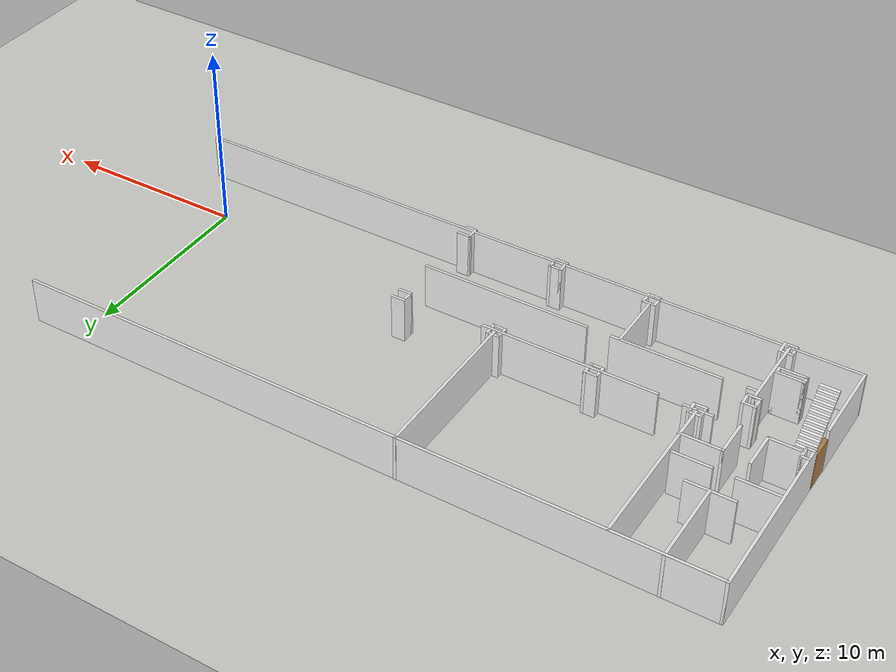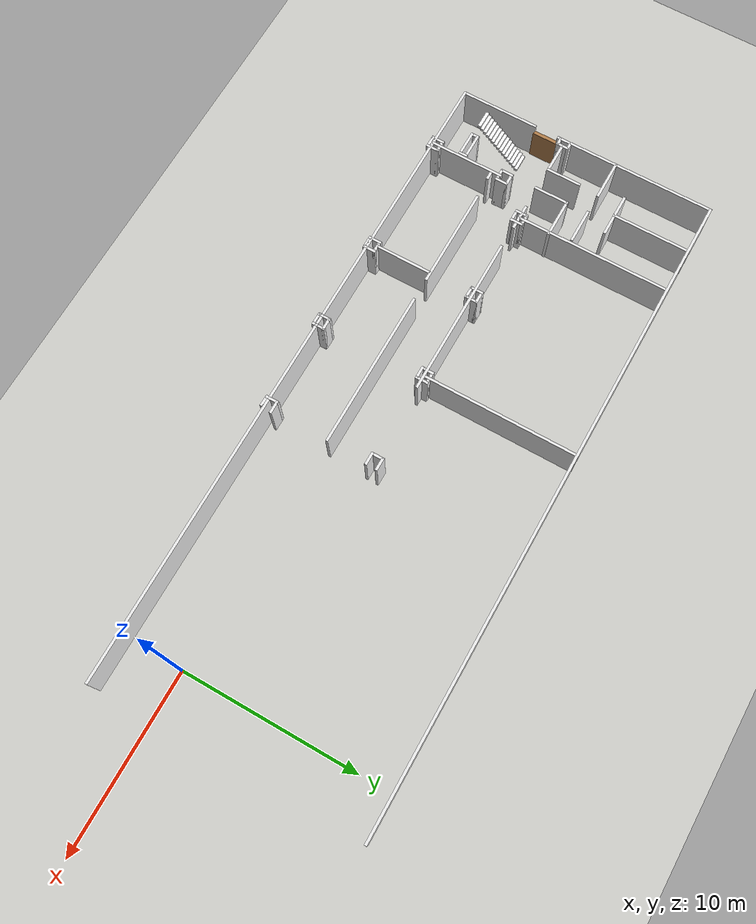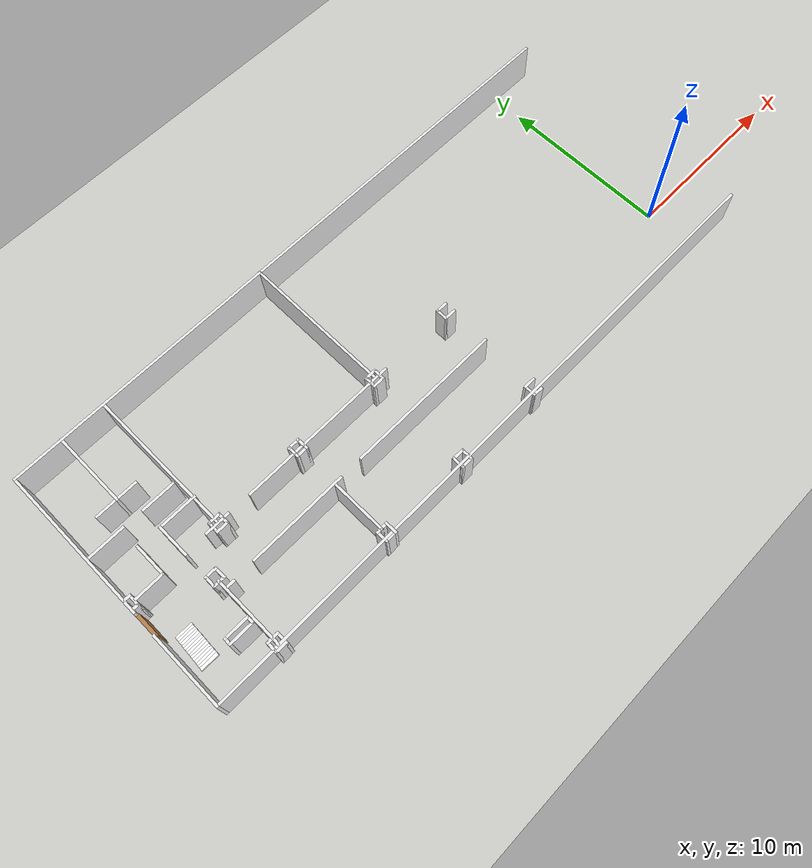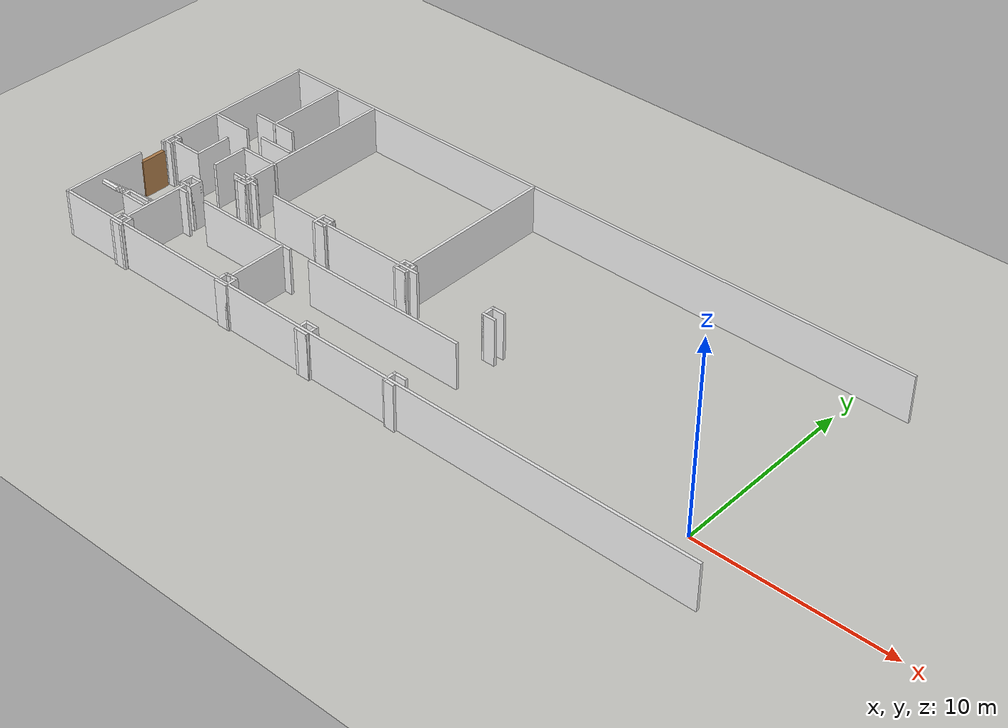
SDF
<sdf version="1.7">
 <world name="default">
  <model name="ground_plane">
   <static>1</static>
   <link name="link">
    <collision name="collision">
     <geometry><plane><normal>0 0 1</normal><size>100 100</size></plane></geometry>
     <surface><friction><ode><mu>100</mu><mu2>50</mu2></ode></friction></surface>
    </collision>
    <visual name="visual">
     <cast_shadows>0</cast_shadows>
     <geometry><plane><normal>0 0 1</normal><size>100 100</size></plane></geometry>
     <material>
      <script><uri>file://media/materials/scripts/gazebo.material</uri><name>Gazebo/CeilingTiled</name></script>
     </material>
    </visual>
   </link>
  </model>
  <model name="Peta_DC">
   <pose>-13.289 4.38092 0 0 -0 0</pose>
   <link name="Door_8">
    <collision name="Door_8_Collision">
     <geometry><box><size>1.42 0.2 2</size></box></geometry>
     <pose>0 0 1 0 -0 0</pose>
    </collision>
    <visual name="Door_8_Visual">
     <pose>0 0 1 0 -0 0</pose>
     <geometry><box><size>1.42 0.2 2</size></box></geometry>
     <material>
      <script><uri>file://media/materials/scripts/gazebo.material</uri><name>Gazebo/Wood</name></script>
     </material>
    </visual>
    <pose>-21.0737 -2.32904 0 0 0 -1.5708</pose>
   </link>
   <link name="Stairs_0">
    <visual name="Stairs_0_Visual_0">
     <pose>-20.1037 -3.21304 0.083333 0 -0 0</pose>
     <geometry><box><size>1 0.178 0.166667</size></box></geometry>
     <material>
      <script><uri>file://media/materials/scripts/gazebo.material</uri><name>Gazebo/Steps</name></script>
      <ambient>1 1 1 1</ambient>
     </material>
     <meta><layer>0</layer></meta>
    </visual>
    <collision name="Stairs_0_Collision_0">
     <geometry><box><size>1 0.178 0.166667</size></box></geometry>
     <pose>-20.1037 -3.21304 0.083333 0 -0 0</pose>
    </collision>
    <visual name="Stairs_0_Visual_1">
     <pose>-20.1037 -3.39104 0.25 0 -0 0</pose>
     <geometry><box><size>1 0.178 0.166667</size></box></geometry>
     <material>
      <script><uri>file://media/materials/scripts/gazebo.material</uri><name>Gazebo/Steps</name></script>
      <ambient>1 1 1 1</ambient>
     </material>
     <meta><layer>0</layer></meta>
    </visual>
    <collision name="Stairs_0_Collision_1">
     <geometry><box><size>1 0.178 0.166667</size></box></geometry>
     <pose>-20.1037 -3.39104 0.25 0 -0 0</pose>
    </collision>
    <visual name="Stairs_0_Visual_2">
     <pose>-20.1037 -3.56904 0.416667 0 -0 0</pose>
     <geometry><box><size>1 0.178 0.166667</size></box></geometry>
     <material>
      <script><uri>file://media/materials/scripts/gazebo.material</uri><name>Gazebo/Steps</name></script>
      <ambient>1 1 1 1</ambient>
     </material>
     <meta><layer>0</layer></meta>
    </visual>
    <collision name="Stairs_0_Collision_2">
     <geometry><box><size>1 0.178 0.166667</size></box></geometry>
     <pose>-20.1037 -3.56904 0.416667 0 -0 0</pose>
    </collision>
    <visual name="Stairs_0_Visual_3">
     <pose>-20.1037 -3.74704 0.583333 0 -0 0</pose>
     <geometry><box><size>1 0.178 0.166667</size></box></geometry>
     <material>
      <script><uri>file://media/materials/scripts/gazebo.material</uri><name>Gazebo/Steps</name></script>
      <ambient>1 1 1 1</ambient>
     </material>
     <meta><layer>0</layer></meta>
    </visual>
    <collision name="Stairs_0_Collision_3">
     <geometry><box><size>1 0.178 0.166667</size></box></geometry>
     <pose>-20.1037 -3.74704 0.583333 0 -0 0</pose>
    </collision>
    <visual name="Stairs_0_Visual_4">
     <pose>-20.1037 -3.92504 0.75 0 -0 0</pose>
     <geometry><box><size>1 0.178 0.166667</size></box></geometry>
     <material>
      <script><uri>file://media/materials/scripts/gazebo.material</uri><name>Gazebo/Steps</name></script>
      <ambient>1 1 1 1</ambient>
     </material>
     <meta><layer>0</layer></meta>
    </visual>
    <collision name="Stairs_0_Collision_4">
     <geometry><box><size>1 0.178 0.166667</size></box></geometry>
     <pose>-20.1037 -3.92504 0.75 0 -0 0</pose>
    </collision>
    <visual name="Stairs_0_Visual_5">
     <pose>-20.1037 -4.10304 0.916667 0 -0 0</pose>
     <geometry><box><size>1 0.178 0.166667</size></box></geometry>
     <material>
      <script><uri>file://media/materials/scripts/gazebo.material</uri><name>Gazebo/Steps</name></script>
      <ambient>1 1 1 1</ambient>
     </material>
     <meta><layer>0</layer></meta>
    </visual>
    <collision name="Stairs_0_Collision_5">
     <geometry><box><size>1 0.178 0.166667</size></box></geometry>
     <pose>-20.1037 -4.10304 0.916667 0 -0 0</pose>
    </collision>
    <visual name="Stairs_0_Visual_6">
     <pose>-20.1037 -4.28104 1.08333 0 -0 0</pose>
     <geometry><box><size>1 0.178 0.166667</size></box></geometry>
     <material>
      <script><uri>file://media/materials/scripts/gazebo.material</uri><name>Gazebo/Steps</name></script>
      <ambient>1 1 1 1</ambient>
     </material>
     <meta><layer>0</layer></meta>
    </visual>
    <collision name="Stairs_0_Collision_6">
     <geometry><box><size>1 0.178 0.166667</size></box></geometry>
     <pose>-20.1037 -4.28104 1.08333 0 -0 0</pose>
    </collision>
    <visual name="Stairs_0_Visual_7">
     <pose>-20.1037 -4.45904 1.25 0 -0 0</pose>
     <geometry><box><size>1 0.178 0.166667</size></box></geometry>
     <material>
      <script><uri>file://media/materials/scripts/gazebo.material</uri><name>Gazebo/Steps</name></script>
      <ambient>1 1 1 1</ambient>
     </material>
     <meta><layer>0</layer></meta>
    </visual>
    <collision name="Stairs_0_Collision_7">
     <geometry><box><size>1 0.178 0.166667</size></box></geometry>
     <pose>-20.1037 -4.45904 1.25 0 -0 0</pose>
    </collision>
    <visual name="Stairs_0_Visual_8">
     <pose>-20.1037 -4.63704 1.41667 0 -0 0</pose>
     <geometry><box><size>1 0.178 0.166667</size></box></geometry>
     <material>
      <script><uri>file://media/materials/scripts/gazebo.material</uri><name>Gazebo/Steps</name></script>
      <ambient>1 1 1 1</ambient>
     </material>
     <meta><layer>0</layer></meta>
    </visual>
    <collision name="Stairs_0_Collision_8">
     <geometry><box><size>1 0.178 0.166667</size></box></geometry>
     <pose>-20.1037 -4.63704 1.41667 0 -0 0</pose>
    </collision>
    <visual name="Stairs_0_Visual_9">
     <pose>-20.1037 -4.81504 1.58333 0 -0 0</pose>
     <geometry><box><size>1 0.178 0.166667</size></box></geometry>
     <material>
      <script><uri>file://media/materials/scripts/gazebo.material</uri><name>Gazebo/Steps</name></script>
      <ambient>1 1 1 1</ambient>
     </material>
     <meta><layer>0</layer></meta>
    </visual>
    <collision name="Stairs_0_Collision_9">
     <geometry><box><size>1 0.178 0.166667</size></box></geometry>
     <pose>-20.1037 -4.81504 1.58333 0 -0 0</pose>
    </collision>
    <visual name="Stairs_0_Visual_10">
     <pose>-20.1037 -4.99304 1.75 0 -0 0</pose>
     <geometry><box><size>1 0.178 0.166667</size></box></geometry>
     <material>
      <script><uri>file://media/materials/scripts/gazebo.material</uri><name>Gazebo/Steps</name></script>
      <ambient>1 1 1 1</ambient>
     </material>
     <meta><layer>0</layer></meta>
    </visual>
    <collision name="Stairs_0_Collision_10">
     <geometry><box><size>1 0.178 0.166667</size></box></geometry>
     <pose>-20.1037 -4.99304 1.75 0 -0 0</pose>
    </collision>
    <visual name="Stairs_0_Visual_11">
     <pose>-20.1037 -5.17104 1.91667 0 -0 0</pose>
     <geometry><box><size>1 0.178 0.166667</size></box></geometry>
     <material>
      <script><uri>file://media/materials/scripts/gazebo.material</uri><name>Gazebo/Steps</name></script>
      <ambient>1 1 1 1</ambient>
     </material>
     <meta><layer>0</layer></meta>
    </visual>
    <collision name="Stairs_0_Collision_11">
     <geometry><box><size>1 0.178 0.166667</size></box></geometry>
     <pose>-20.1037 -5.17104 1.91667 0 -0 0</pose>
    </collision>
    <visual name="Stairs_0_Visual_12">
     <pose>-20.1037 -5.34904 2.08333 0 -0 0</pose>
     <geometry><box><size>1 0.178 0.166667</size></box></geometry>
     <material>
      <script><uri>file://media/materials/scripts/gazebo.material</uri><name>Gazebo/Steps</name></script>
      <ambient>1 1 1 1</ambient>
     </material>
     <meta><layer>0</layer></meta>
    </visual>
    <collision name="Stairs_0_Collision_12">
     <geometry><box><size>1 0.178 0.166667</size></box></geometry>
     <pose>-20.1037 -5.34904 2.08333 0 -0 0</pose>
    </collision>
    <visual name="Stairs_0_Visual_13">
     <pose>-20.1037 -5.52704 2.25 0 -0 0</pose>
     <geometry><box><size>1 0.178 0.166667</size></box></geometry>
     <material>
      <script><uri>file://media/materials/scripts/gazebo.material</uri><name>Gazebo/Steps</name></script>
      <ambient>1 1 1 1</ambient>
     </material>
     <meta><layer>0</layer></meta>
    </visual>
    <collision name="Stairs_0_Collision_13">
     <geometry><box><size>1 0.178 0.166667</size></box></geometry>
     <pose>-20.1037 -5.52704 2.25 0 -0 0</pose>
    </collision>
    <visual name="Stairs_0_Visual_14">
     <pose>-20.1037 -5.70504 2.41667 0 -0 0</pose>
     <geometry><box><size>1 0.178 0.166667</size></box></geometry>
     <material>
      <script><uri>file://media/materials/scripts/gazebo.material</uri><name>Gazebo/Steps</name></script>
      <ambient>1 1 1 1</ambient>
     </material>
     <meta><layer>0</layer></meta>
    </visual>
    <collision name="Stairs_0_Collision_14">
     <geometry><box><size>1 0.178 0.166667</size></box></geometry>
     <pose>-20.1037 -5.70504 2.41667 0 -0 0</pose>
    </collision>
   </link>
   <link name="Wall_0">
    <collision name="Wall_0_Collision">
     <geometry><box><size>37.25 0.15 2.5</size></box></geometry>
     <pose>0 0 1.25 0 -0 0</pose>
    </collision>
    <visual name="Wall_0_Visual">
     <pose>0 0 1.25 0 -0 0</pose>
     <geometry><box><size>37.25 0.15 2.5</size></box></geometry>
     <material>
      <script><uri>file://media/materials/scripts/gazebo.material</uri><name>Gazebo/White</name></script>
      <ambient>1 1 1 1</ambient>
     </material>
     <meta><layer>0</layer></meta>
    </visual>
    <pose>-2.5644 -7.40816 0 0 -0 3.14159</pose>
   </link>
   <link name="Wall_1">
    <collision name="Wall_1_Collision">
     <geometry><box><size>4.5 0.15 2.5</size></box></geometry>
     <pose>0 0 1.25 0 -0 0</pose>
    </collision>
    <visual name="Wall_1_Visual">
     <pose>0 0 1.25 0 -0 0</pose>
     <geometry><box><size>4.5 0.15 2.5</size></box></geometry>
     <material>
      <script><uri>file://media/materials/scripts/gazebo.material</uri><name>Gazebo/White</name></script>
      <ambient>1 1 1 1</ambient>
     </material>
     <meta><layer>0</layer></meta>
    </visual>
    <pose>-21.1144 -5.23316 0 0 -0 1.5708</pose>
   </link>
   <link name="Wall_127">
    <collision name="Wall_127_Collision">
     <geometry><box><size>0.75 0.15 2.5</size></box></geometry>
     <pose>0 0 1.25 0 -0 0</pose>
    </collision>
    <visual name="Wall_127_Visual">
     <pose>0 0 1.25 0 -0 0</pose>
     <geometry><box><size>0.75 0.15 2.5</size></box></geometry>
     <material>
      <script><uri>file://media/materials/scripts/gazebo.material</uri><name>Gazebo/White</name></script>
      <ambient>1 1 1 1</ambient>
     </material>
     <meta><layer>0</layer></meta>
    </visual>
    <pose>-5.57371 -7.28404 0 0 -0 1.5708</pose>
   </link>
   <link name="Wall_128">
    <collision name="Wall_128_Collision">
     <geometry><box><size>0.75 0.15 2.5</size></box></geometry>
     <pose>0 0 1.25 0 -0 0</pose>
    </collision>
    <visual name="Wall_128_Visual">
     <pose>0 0 1.25 0 -0 0</pose>
     <geometry><box><size>0.75 0.15 2.5</size></box></geometry>
     <material>
      <script><uri>file://media/materials/scripts/gazebo.material</uri><name>Gazebo/White</name></script>
      <ambient>1 1 1 1</ambient>
     </material>
     <meta><layer>0</layer></meta>
    </visual>
    <pose>-5.27371 -6.98404 0 0 -0 0</pose>
   </link>
   <link name="Wall_129">
    <collision name="Wall_129_Collision">
     <geometry><box><size>0.75 0.15 2.5</size></box></geometry>
     <pose>0 0 1.25 0 -0 0</pose>
    </collision>
    <visual name="Wall_129_Visual">
     <pose>0 0 1.25 0 -0 0</pose>
     <geometry><box><size>0.75 0.15 2.5</size></box></geometry>
     <material>
      <script><uri>file://media/materials/scripts/gazebo.material</uri><name>Gazebo/White</name></script>
      <ambient>1 1 1 1</ambient>
     </material>
     <meta><layer>0</layer></meta>
    </visual>
    <pose>-4.97371 -7.28404 0 0 -0 -1.5708</pose>
   </link>
   <link name="Wall_130">
    <collision name="Wall_130_Collision">
     <geometry><box><size>0.75 0.15 2.5</size></box></geometry>
     <pose>0 0 1.25 0 -0 0</pose>
    </collision>
    <visual name="Wall_130_Visual">
     <pose>0 0 1.25 0 -0 0</pose>
     <geometry><box><size>0.75 0.15 2.5</size></box></geometry>
     <material>
      <script><uri>file://media/materials/scripts/gazebo.material</uri><name>Gazebo/White</name></script>
      <ambient>1 1 1 1</ambient>
     </material>
     <meta><layer>0</layer></meta>
    </visual>
    <pose>-5.27371 -7.58404 0 0 -0 3.14159</pose>
   </link>
   <link name="Wall_132">
    <collision name="Wall_132_Collision">
     <geometry><box><size>0.75 0.15 2.5</size></box></geometry>
     <pose>0 0 1.25 0 -0 0</pose>
    </collision>
    <visual name="Wall_132_Visual">
     <pose>0 0 1.25 0 -0 0</pose>
     <geometry><box><size>0.75 0.15 2.5</size></box></geometry>
     <material>
      <script><uri>file://media/materials/scripts/gazebo.material</uri><name>Gazebo/White</name></script>
      <ambient>1 1 1 1</ambient>
     </material>
     <meta><layer>0</layer></meta>
    </visual>
    <pose>-0.033709 -6.95404 0 0 -0 0</pose>
   </link>
   <link name="Wall_134">
    <collision name="Wall_134_Collision">
     <geometry><box><size>0.75 0.15 2.5</size></box></geometry>
     <pose>0 0 1.25 0 -0 0</pose>
    </collision>
    <visual name="Wall_134_Visual">
     <pose>0 0 1.25 0 -0 0</pose>
     <geometry><box><size>0.75 0.15 2.5</size></box></geometry>
     <material>
      <script><uri>file://media/materials/scripts/gazebo.material</uri><name>Gazebo/White</name></script>
      <ambient>1 1 1 1</ambient>
     </material>
     <meta><layer>0</layer></meta>
    </visual>
    <pose>-0.333709 -7.25404 0 0 -0 -1.5708</pose>
   </link>
   <link name="Wall_135">
    <collision name="Wall_135_Collision">
     <geometry><box><size>0.640084 0.15 2.5</size></box></geometry>
     <pose>0 0 1.25 0 -0 0</pose>
    </collision>
    <visual name="Wall_135_Visual">
     <pose>0 0 1.25 0 -0 0</pose>
     <geometry><box><size>0.640084 0.15 2.5</size></box></geometry>
     <material>
      <script><uri>file://media/materials/scripts/gazebo.material</uri><name>Gazebo/White</name></script>
      <ambient>1 1 1 1</ambient>
     </material>
     <meta><layer>0</layer></meta>
    </visual>
    <pose>-0.088815 -7.56254 0 0 -0 -0.034705</pose>
   </link>
   <link name="Wall_137">
    <collision name="Wall_137_Collision">
     <geometry><box><size>3.25 0.15 2.5</size></box></geometry>
     <pose>0 0 1.25 0 -0 0</pose>
    </collision>
    <visual name="Wall_137_Visual">
     <pose>0 0 1.25 0 -0 0</pose>
     <geometry><box><size>3.25 0.15 2.5</size></box></geometry>
     <material>
      <script><uri>file://media/materials/scripts/gazebo.material</uri><name>Gazebo/White</name></script>
      <ambient>1 1 1 1</ambient>
     </material>
     <meta><layer>0</layer></meta>
    </visual>
    <pose>-10.4737 -5.36404 0 0 -0 -1.5708</pose>
   </link>
   <link name="Wall_138">
    <collision name="Wall_138_Collision">
     <geometry><box><size>0.5 0.15 2.5</size></box></geometry>
     <pose>0 0 1.25 0 -0 0</pose>
    </collision>
    <visual name="Wall_138_Visual">
     <pose>0 0 1.25 0 -0 0</pose>
     <geometry><box><size>0.5 0.15 2.5</size></box></geometry>
     <material>
      <script><uri>file://media/materials/scripts/gazebo.material</uri><name>Gazebo/White</name></script>
      <ambient>1 1 1 1</ambient>
     </material>
     <meta><layer>0</layer></meta>
    </visual>
    <pose>-10.2987 -6.91404 0 0 -0 0</pose>
   </link>
   <link name="Wall_139">
    <collision name="Wall_139_Collision">
     <geometry><box><size>0.75 0.15 2.5</size></box></geometry>
     <pose>0 0 1.25 0 -0 0</pose>
    </collision>
    <visual name="Wall_139_Visual">
     <pose>0 0 1.25 0 -0 0</pose>
     <geometry><box><size>0.75 0.15 2.5</size></box></geometry>
     <material>
      <script><uri>file://media/materials/scripts/gazebo.material</uri><name>Gazebo/White</name></script>
      <ambient>1 1 1 1</ambient>
     </material>
     <meta><layer>0</layer></meta>
    </visual>
    <pose>-10.1237 -7.21404 0 0 -0 -1.5708</pose>
   </link>
   <link name="Wall_140">
    <collision name="Wall_140_Collision">
     <geometry><box><size>0.75 0.15 2.5</size></box></geometry>
     <pose>0 0 1.25 0 -0 0</pose>
    </collision>
    <visual name="Wall_140_Visual">
     <pose>0 0 1.25 0 -0 0</pose>
     <geometry><box><size>0.75 0.15 2.5</size></box></geometry>
     <material>
      <script><uri>file://media/materials/scripts/gazebo.material</uri><name>Gazebo/White</name></script>
      <ambient>1 1 1 1</ambient>
     </material>
     <meta><layer>0</layer></meta>
    </visual>
    <pose>-10.4237 -7.51404 0 0 -0 3.14159</pose>
   </link>
   <link name="Wall_141">
    <collision name="Wall_141_Collision">
     <geometry><box><size>0.75 0.15 2.5</size></box></geometry>
     <pose>0 0 1.25 0 -0 0</pose>
    </collision>
    <visual name="Wall_141_Visual">
     <pose>0 0 1.25 0 -0 0</pose>
     <geometry><box><size>0.75 0.15 2.5</size></box></geometry>
     <material>
      <script><uri>file://media/materials/scripts/gazebo.material</uri><name>Gazebo/White</name></script>
      <ambient>1 1 1 1</ambient>
     </material>
     <meta><layer>0</layer></meta>
    </visual>
    <pose>-10.7237 -7.21404 0 0 -0 1.5708</pose>
   </link>
   <link name="Wall_142">
    <collision name="Wall_142_Collision">
     <geometry><box><size>0.4 0.15 2.5</size></box></geometry>
     <pose>0 0 1.25 0 -0 0</pose>
    </collision>
    <visual name="Wall_142_Visual">
     <pose>0 0 1.25 0 -0 0</pose>
     <geometry><box><size>0.4 0.15 2.5</size></box></geometry>
     <material>
      <script><uri>file://media/materials/scripts/gazebo.material</uri><name>Gazebo/White</name></script>
      <ambient>1 1 1 1</ambient>
     </material>
     <meta><layer>0</layer></meta>
    </visual>
    <pose>-10.5987 -6.91404 0 0 -0 0</pose>
   </link>
   <link name="Wall_144">
    <collision name="Wall_144_Collision">
     <geometry><box><size>0.75 0.15 2.5</size></box></geometry>
     <pose>0 0 1.25 0 -0 0</pose>
    </collision>
    <visual name="Wall_144_Visual">
     <pose>0 0 1.25 0 -0 0</pose>
     <geometry><box><size>0.75 0.15 2.5</size></box></geometry>
     <material>
      <script><uri>file://media/materials/scripts/gazebo.material</uri><name>Gazebo/White</name></script>
      <ambient>1 1 1 1</ambient>
     </material>
     <meta><layer>0</layer></meta>
    </visual>
    <pose>-17.4437 -6.97404 0 0 -0 0</pose>
   </link>
   <link name="Wall_145">
    <collision name="Wall_145_Collision">
     <geometry><box><size>0.75 0.15 2.5</size></box></geometry>
     <pose>0 0 1.25 0 -0 0</pose>
    </collision>
    <visual name="Wall_145_Visual">
     <pose>0 0 1.25 0 -0 0</pose>
     <geometry><box><size>0.75 0.15 2.5</size></box></geometry>
     <material>
      <script><uri>file://media/materials/scripts/gazebo.material</uri><name>Gazebo/White</name></script>
      <ambient>1 1 1 1</ambient>
     </material>
     <meta><layer>0</layer></meta>
    </visual>
    <pose>-17.1437 -7.27404 0 0 -0 -1.5708</pose>
   </link>
   <link name="Wall_146">
    <collision name="Wall_146_Collision">
     <geometry><box><size>0.75 0.15 2.5</size></box></geometry>
     <pose>0 0 1.25 0 -0 0</pose>
    </collision>
    <visual name="Wall_146_Visual">
     <pose>0 0 1.25 0 -0 0</pose>
     <geometry><box><size>0.75 0.15 2.5</size></box></geometry>
     <material>
      <script><uri>file://media/materials/scripts/gazebo.material</uri><name>Gazebo/White</name></script>
      <ambient>1 1 1 1</ambient>
     </material>
     <meta><layer>0</layer></meta>
    </visual>
    <pose>-17.4437 -7.57404 0 0 -0 3.14159</pose>
   </link>
   <link name="Wall_147">
    <collision name="Wall_147_Collision">
     <geometry><box><size>0.75 0.15 2.5</size></box></geometry>
     <pose>0 0 1.25 0 -0 0</pose>
    </collision>
    <visual name="Wall_147_Visual">
     <pose>0 0 1.25 0 -0 0</pose>
     <geometry><box><size>0.75 0.15 2.5</size></box></geometry>
     <material>
      <script><uri>file://media/materials/scripts/gazebo.material</uri><name>Gazebo/White</name></script>
      <ambient>1 1 1 1</ambient>
     </material>
     <meta><layer>0</layer></meta>
    </visual>
    <pose>-17.7437 -7.27404 0 0 -0 1.5708</pose>
   </link>
   <link name="Wall_149">
    <collision name="Wall_149_Collision">
     <geometry><box><size>1.5 0.15 2.5</size></box></geometry>
     <pose>0 0 1.25 0 -0 0</pose>
    </collision>
    <visual name="Wall_149_Visual">
     <pose>0 0 1.25 0 -0 0</pose>
     <geometry><box><size>1.5 0.15 2.5</size></box></geometry>
     <material>
      <script><uri>file://media/materials/scripts/gazebo.material</uri><name>Gazebo/White</name></script>
      <ambient>1 1 1 1</ambient>
     </material>
     <meta><layer>0</layer></meta>
    </visual>
    <pose>-18.2887 -5.46404 0 0 -0 0</pose>
   </link>
   <link name="Wall_150">
    <collision name="Wall_150_Collision">
     <geometry><box><size>0.5 0.15 2.5</size></box></geometry>
     <pose>0 0 1.25 0 -0 0</pose>
    </collision>
    <visual name="Wall_150_Visual">
     <pose>0 0 1.25 0 -0 0</pose>
     <geometry><box><size>0.5 0.15 2.5</size></box></geometry>
     <material>
      <script><uri>file://media/materials/scripts/gazebo.material</uri><name>Gazebo/White</name></script>
      <ambient>1 1 1 1</ambient>
     </material>
     <meta><layer>0</layer></meta>
    </visual>
    <pose>-17.6137 -5.63904 0 0 -0 -1.5708</pose>
   </link>
   <link name="Wall_151">
    <collision name="Wall_151_Collision">
     <geometry><box><size>1.5 0.15 2.5</size></box></geometry>
     <pose>0 0 1.25 0 -0 0</pose>
    </collision>
    <visual name="Wall_151_Visual">
     <pose>0 0 1.25 0 -0 0</pose>
     <geometry><box><size>1.5 0.15 2.5</size></box></geometry>
     <material>
      <script><uri>file://media/materials/scripts/gazebo.material</uri><name>Gazebo/White</name></script>
      <ambient>1 1 1 1</ambient>
     </material>
     <meta><layer>0</layer></meta>
    </visual>
    <pose>-18.2887 -5.81404 0 0 -0 3.14159</pose>
   </link>
   <link name="Wall_152">
    <collision name="Wall_152_Collision">
     <geometry><box><size>0.5 0.15 2.5</size></box></geometry>
     <pose>0 0 1.25 0 -0 0</pose>
    </collision>
    <visual name="Wall_152_Visual">
     <pose>0 0 1.25 0 -0 0</pose>
     <geometry><box><size>0.5 0.15 2.5</size></box></geometry>
     <material>
      <script><uri>file://media/materials/scripts/gazebo.material</uri><name>Gazebo/White</name></script>
      <ambient>1 1 1 1</ambient>
     </material>
     <meta><layer>0</layer></meta>
    </visual>
    <pose>-18.9637 -5.63904 0 0 -0 1.5708</pose>
   </link>
   <link name="Wall_19">
    <collision name="Wall_19_Collision">
     <geometry><box><size>9.25 0.15 2.5</size></box></geometry>
     <pose>0 0 1.25 0 -0 0</pose>
    </collision>
    <visual name="Wall_19_Visual">
     <pose>0 0 1.25 0 -0 0</pose>
     <geometry><box><size>9.25 0.15 2.5</size></box></geometry>
     <material>
      <script><uri>file://media/materials/scripts/gazebo.material</uri><name>Gazebo/White</name></script>
      <ambient>1 1 1 1</ambient>
     </material>
     <meta><layer>0</layer></meta>
    </visual>
    <pose>-9.09929 -1.20243 0 0 -0 3.14159</pose>
   </link>
   <link name="Wall_21">
    <collision name="Wall_21_Collision">
     <geometry><box><size>1.5 0.15 2.5</size></box></geometry>
     <pose>0 0 1.25 0 -0 0</pose>
    </collision>
    <visual name="Wall_21_Visual">
     <pose>0 0 1.25 0 -0 0</pose>
     <geometry><box><size>1.5 0.15 2.5</size></box></geometry>
     <material>
      <script><uri>file://media/materials/scripts/gazebo.material</uri><name>Gazebo/White</name></script>
      <ambient>1 1 1 1</ambient>
     </material>
     <meta><layer>0</layer></meta>
    </visual>
    <pose>-15.6998 -1.16743 0 0 -0 3.14159</pose>
   </link>
   <link name="Wall_23">
    <collision name="Wall_23_Collision">
     <geometry><box><size>8.75 0.15 2.5</size></box></geometry>
     <pose>0 0 1.25 0 -0 0</pose>
    </collision>
    <visual name="Wall_23_Visual">
     <pose>0 0 1.25 0 -0 0</pose>
     <geometry><box><size>8.75 0.15 2.5</size></box></geometry>
     <material>
      <script><uri>file://media/materials/scripts/gazebo.material</uri><name>Gazebo/White</name></script>
      <ambient>1 1 1 1</ambient>
     </material>
     <meta><layer>0</layer></meta>
    </visual>
    <pose>-15.6632 3.20424 0 0 -0 -1.5708</pose>
   </link>
   <link name="Wall_25">
    <collision name="Wall_25_Collision">
     <geometry><box><size>0.75 0.15 2.5</size></box></geometry>
     <pose>0 0 1.25 0 -0 0</pose>
    </collision>
    <visual name="Wall_25_Visual">
     <pose>0 0 1.25 0 -0 0</pose>
     <geometry><box><size>0.75 0.15 2.5</size></box></geometry>
     <material>
      <script><uri>file://media/materials/scripts/gazebo.material</uri><name>Gazebo/White</name></script>
      <ambient>1 1 1 1</ambient>
     </material>
     <meta><layer>0</layer></meta>
    </visual>
    <pose>-15.6558 -0.874824 0 0 -0 0</pose>
   </link>
   <link name="Wall_28">
    <collision name="Wall_28_Collision">
     <geometry><box><size>0.75 0.15 2.5</size></box></geometry>
     <pose>0 0 1.25 0 -0 0</pose>
    </collision>
    <visual name="Wall_28_Visual">
     <pose>0 0 1.25 0 -0 0</pose>
     <geometry><box><size>0.75 0.15 2.5</size></box></geometry>
     <material>
      <script><uri>file://media/materials/scripts/gazebo.material</uri><name>Gazebo/White</name></script>
      <ambient>1 1 1 1</ambient>
     </material>
     <meta><layer>0</layer></meta>
    </visual>
    <pose>-15.3558 -1.17482 0 0 -0 -1.5708</pose>
   </link>
   <link name="Wall_29">
    <collision name="Wall_29_Collision">
     <geometry><box><size>0.75 0.15 2.5</size></box></geometry>
     <pose>0 0 1.25 0 -0 0</pose>
    </collision>
    <visual name="Wall_29_Visual">
     <pose>0 0 1.25 0 -0 0</pose>
     <geometry><box><size>0.75 0.15 2.5</size></box></geometry>
     <material>
      <script><uri>file://media/materials/scripts/gazebo.material</uri><name>Gazebo/White</name></script>
      <ambient>1 1 1 1</ambient>
     </material>
     <meta><layer>0</layer></meta>
    </visual>
    <pose>-15.6558 -1.47482 0 0 -0 3.14159</pose>
   </link>
   <link name="Wall_3">
    <collision name="Wall_3_Collision">
     <geometry><box><size>9.25 0.15 2.5</size></box></geometry>
     <pose>0 0 1.25 0 -0 0</pose>
    </collision>
    <visual name="Wall_3_Visual">
     <pose>0 0 1.25 0 -0 0</pose>
     <geometry><box><size>9.25 0.15 2.5</size></box></geometry>
     <material>
      <script><uri>file://media/materials/scripts/gazebo.material</uri><name>Gazebo/White</name></script>
      <ambient>1 1 1 1</ambient>
     </material>
     <meta><layer>0</layer></meta>
    </visual>
    <pose>-21.0873 2.96692 0 0 -0 1.5708</pose>
   </link>
   <link name="Wall_30">
    <collision name="Wall_30_Collision">
     <geometry><box><size>0.75 0.15 2.5</size></box></geometry>
     <pose>0 0 1.25 0 -0 0</pose>
    </collision>
    <visual name="Wall_30_Visual">
     <pose>0 0 1.25 0 -0 0</pose>
     <geometry><box><size>0.75 0.15 2.5</size></box></geometry>
     <material>
      <script><uri>file://media/materials/scripts/gazebo.material</uri><name>Gazebo/White</name></script>
      <ambient>1 1 1 1</ambient>
     </material>
     <meta><layer>0</layer></meta>
    </visual>
    <pose>-15.9558 -1.17482 0 0 -0 1.5708</pose>
   </link>
   <link name="Wall_32">
    <collision name="Wall_32_Collision">
     <geometry><box><size>2 0.15 2.5</size></box></geometry>
     <pose>0 0 1.25 0 -0 0</pose>
    </collision>
    <visual name="Wall_32_Visual">
     <pose>0 0 1.25 0 -0 0</pose>
     <geometry><box><size>2 0.15 2.5</size></box></geometry>
     <material>
      <script><uri>file://media/materials/scripts/gazebo.material</uri><name>Gazebo/White</name></script>
      <ambient>1 1 1 1</ambient>
     </material>
     <meta><layer>0</layer></meta>
    </visual>
    <pose>-17.7114 -0.295626 0 0 -0 1.5708</pose>
   </link>
   <link name="Wall_33">
    <collision name="Wall_33_Collision">
     <geometry><box><size>2.25 0.15 2.5</size></box></geometry>
     <pose>0 0 1.25 0 -0 0</pose>
    </collision>
    <visual name="Wall_33_Visual">
     <pose>0 0 1.25 0 -0 0</pose>
     <geometry><box><size>2.25 0.15 2.5</size></box></geometry>
     <material>
      <script><uri>file://media/materials/scripts/gazebo.material</uri><name>Gazebo/White</name></script>
      <ambient>1 1 1 1</ambient>
     </material>
     <meta><layer>0</layer></meta>
    </visual>
    <pose>-16.6614 0.629374 0 0 -0 0</pose>
   </link>
   <link name="Wall_35">
    <collision name="Wall_35_Collision">
     <geometry><box><size>2 0.15 2.5</size></box></geometry>
     <pose>0 0 1.25 0 -0 0</pose>
    </collision>
    <visual name="Wall_35_Visual">
     <pose>0 0 1.25 0 -0 0</pose>
     <geometry><box><size>2 0.15 2.5</size></box></geometry>
     <material>
      <script><uri>file://media/materials/scripts/gazebo.material</uri><name>Gazebo/White</name></script>
      <ambient>1 1 1 1</ambient>
     </material>
     <meta><layer>0</layer></meta>
    </visual>
    <pose>-16.813 1.865 0 0 -0 0</pose>
   </link>
   <link name="Wall_37">
    <collision name="Wall_37_Collision">
     <geometry><box><size>1.75 0.15 2.5</size></box></geometry>
     <pose>0 0 1.25 0 -0 0</pose>
    </collision>
    <visual name="Wall_37_Visual">
     <pose>0 0 1.25 0 -0 0</pose>
     <geometry><box><size>1.75 0.15 2.5</size></box></geometry>
     <material>
      <script><uri>file://media/materials/scripts/gazebo.material</uri><name>Gazebo/White</name></script>
      <ambient>1 1 1 1</ambient>
     </material>
     <meta><layer>0</layer></meta>
    </visual>
    <pose>-19.8374 -1.16743 0 0 -0 0</pose>
   </link>
   <link name="Wall_38">
    <collision name="Wall_38_Collision">
     <geometry><box><size>2 0.15 2.5</size></box></geometry>
     <pose>0 0 1.25 0 -0 0</pose>
    </collision>
    <visual name="Wall_38_Visual">
     <pose>0 0 1.25 0 -0 0</pose>
     <geometry><box><size>2 0.15 2.5</size></box></geometry>
     <material>
      <script><uri>file://media/materials/scripts/gazebo.material</uri><name>Gazebo/White</name></script>
      <ambient>1 1 1 1</ambient>
     </material>
     <meta><layer>0</layer></meta>
    </visual>
    <pose>-19.0374 -0.242426 0 0 -0 1.5708</pose>
   </link>
   <link name="Wall_4">
    <collision name="Wall_4_Collision">
     <geometry><box><size>37 0.15 2.5</size></box></geometry>
     <pose>0 0 1.25 0 -0 0</pose>
    </collision>
    <visual name="Wall_4_Visual">
     <pose>0 0 1.25 0 -0 0</pose>
     <geometry><box><size>37 0.15 2.5</size></box></geometry>
     <material>
      <script><uri>file://media/materials/scripts/gazebo.material</uri><name>Gazebo/White</name></script>
      <ambient>1 1 1 1</ambient>
     </material>
     <meta><layer>0</layer></meta>
    </visual>
    <pose>-2.66231 7.51692 0 0 -0 0</pose>
   </link>
   <link name="Wall_40">
    <collision name="Wall_40_Collision">
     <geometry><box><size>2.25 0.15 2.5</size></box></geometry>
     <pose>0 0 1.25 0 -0 0</pose>
    </collision>
    <visual name="Wall_40_Visual">
     <pose>0 0 1.25 0 -0 0</pose>
     <geometry><box><size>2.25 0.15 2.5</size></box></geometry>
     <material>
      <script><uri>file://media/materials/scripts/gazebo.material</uri><name>Gazebo/White</name></script>
      <ambient>1 1 1 1</ambient>
     </material>
     <meta><layer>0</layer></meta>
    </visual>
    <pose>-19.9864 1.8916 0 0 -0 0</pose>
   </link>
   <link name="Wall_42">
    <collision name="Wall_42_Collision">
     <geometry><box><size>2.5 0.15 2.5</size></box></geometry>
     <pose>0 0 1.25 0 -0 0</pose>
    </collision>
    <visual name="Wall_42_Visual">
     <pose>0 0 1.25 0 -0 0</pose>
     <geometry><box><size>2.5 0.15 2.5</size></box></geometry>
     <material>
      <script><uri>file://media/materials/scripts/gazebo.material</uri><name>Gazebo/White</name></script>
      <ambient>1 1 1 1</ambient>
     </material>
     <meta><layer>0</layer></meta>
    </visual>
    <pose>-18.292 3.19501 0 0 -0 0</pose>
   </link>
   <link name="Wall_44">
    <collision name="Wall_44_Collision">
     <geometry><box><size>4.5 0.15 2.5</size></box></geometry>
     <pose>0 0 1.25 0 -0 0</pose>
    </collision>
    <visual name="Wall_44_Visual">
     <pose>0 0 1.25 0 -0 0</pose>
     <geometry><box><size>4.5 0.15 2.5</size></box></geometry>
     <material>
      <script><uri>file://media/materials/scripts/gazebo.material</uri><name>Gazebo/White</name></script>
      <ambient>1 1 1 1</ambient>
     </material>
     <meta><layer>0</layer></meta>
    </visual>
    <pose>-18.27 5.35584 0 0 -0 -1.5708</pose>
   </link>
   <link name="Wall_46">
    <collision name="Wall_46_Collision">
     <geometry><box><size>8.75 0.15 2.5</size></box></geometry>
     <pose>0 0 1.25 0 -0 0</pose>
    </collision>
    <visual name="Wall_46_Visual">
     <pose>0 0 1.25 0 -0 0</pose>
     <geometry><box><size>8.75 0.15 2.5</size></box></geometry>
     <material>
      <script><uri>file://media/materials/scripts/gazebo.material</uri><name>Gazebo/White</name></script>
      <ambient>1 1 1 1</ambient>
     </material>
     <meta><layer>0</layer></meta>
    </visual>
    <pose>-5.2359 3.23084 0 0 -0 -1.5708</pose>
   </link>
   <link name="Wall_50">
    <collision name="Wall_50_Collision">
     <geometry><box><size>4.25 0.15 2.5</size></box></geometry>
     <pose>0 0 1.25 0 -0 0</pose>
    </collision>
    <visual name="Wall_50_Visual">
     <pose>0 0 1.25 0 -0 0</pose>
     <geometry><box><size>4.25 0.15 2.5</size></box></geometry>
     <material>
      <script><uri>file://media/materials/scripts/gazebo.material</uri><name>Gazebo/White</name></script>
      <ambient>1 1 1 1</ambient>
     </material>
     <meta><layer>0</layer></meta>
    </visual>
    <pose>-17.4454 -5.31884 0 0 -0 -1.5708</pose>
   </link>
   <link name="Wall_52">
    <collision name="Wall_52_Collision">
     <geometry><box><size>5.75 0.15 2.5</size></box></geometry>
     <pose>0 0 1.25 0 -0 0</pose>
    </collision>
    <visual name="Wall_52_Visual">
     <pose>0 0 1.25 0 -0 0</pose>
     <geometry><box><size>5.75 0.15 2.5</size></box></geometry>
     <material>
      <script><uri>file://media/materials/scripts/gazebo.material</uri><name>Gazebo/White</name></script>
      <ambient>1 1 1 1</ambient>
     </material>
     <meta><layer>0</layer></meta>
    </visual>
    <pose>-12.8632 -3.72105 0 0 -0 0</pose>
   </link>
   <link name="Wall_54">
    <collision name="Wall_54_Collision">
     <geometry><box><size>0.5 0.15 2.5</size></box></geometry>
     <pose>0 0 1.25 0 -0 0</pose>
    </collision>
    <visual name="Wall_54_Visual">
     <pose>0 0 1.25 0 -0 0</pose>
     <geometry><box><size>0.5 0.15 2.5</size></box></geometry>
     <material>
      <script><uri>file://media/materials/scripts/gazebo.material</uri><name>Gazebo/White</name></script>
      <ambient>1 1 1 1</ambient>
     </material>
     <meta><layer>0</layer></meta>
    </visual>
    <pose>-17.1416 -3.77425 0 0 -0 3.14159</pose>
   </link>
   <link name="Wall_56">
    <collision name="Wall_56_Collision">
     <geometry><box><size>9 0.15 2.5</size></box></geometry>
     <pose>0 0 1.25 0 -0 0</pose>
    </collision>
    <visual name="Wall_56_Visual">
     <pose>0 0 1.25 0 -0 0</pose>
     <geometry><box><size>9 0.15 2.5</size></box></geometry>
     <material>
      <script><uri>file://media/materials/scripts/gazebo.material</uri><name>Gazebo/White</name></script>
      <ambient>1 1 1 1</ambient>
     </material>
     <meta><layer>0</layer></meta>
    </visual>
    <pose>-4.26892 -3.72105 0 0 -0 0</pose>
   </link>
   <link name="Wall_64">
    <collision name="Wall_64_Collision">
     <geometry><box><size>0.75 0.15 2.5</size></box></geometry>
     <pose>0 0 1.25 0 -0 0</pose>
    </collision>
    <visual name="Wall_64_Visual">
     <pose>0 0 1.25 0 -0 0</pose>
     <geometry><box><size>0.75 0.15 2.5</size></box></geometry>
     <material>
      <script><uri>file://media/materials/scripts/gazebo.material</uri><name>Gazebo/White</name></script>
      <ambient>1 1 1 1</ambient>
     </material>
     <meta><layer>0</layer></meta>
    </visual>
    <pose>-17.7537 -3.02404 0 0 -0 1.5708</pose>
   </link>
   <link name="Wall_65">
    <collision name="Wall_65_Collision">
     <geometry><box><size>0.75 0.15 2.5</size></box></geometry>
     <pose>0 0 1.25 0 -0 0</pose>
    </collision>
    <visual name="Wall_65_Visual">
     <pose>0 0 1.25 0 -0 0</pose>
     <geometry><box><size>0.75 0.15 2.5</size></box></geometry>
     <material>
      <script><uri>file://media/materials/scripts/gazebo.material</uri><name>Gazebo/White</name></script>
      <ambient>1 1 1 1</ambient>
     </material>
     <meta><layer>0</layer></meta>
    </visual>
    <pose>-17.4537 -2.72404 0 0 -0 0</pose>
   </link>
   <link name="Wall_66">
    <collision name="Wall_66_Collision">
     <geometry><box><size>0.75 0.15 2.5</size></box></geometry>
     <pose>0 0 1.25 0 -0 0</pose>
    </collision>
    <visual name="Wall_66_Visual">
     <pose>0 0 1.25 0 -0 0</pose>
     <geometry><box><size>0.75 0.15 2.5</size></box></geometry>
     <material>
      <script><uri>file://media/materials/scripts/gazebo.material</uri><name>Gazebo/White</name></script>
      <ambient>1 1 1 1</ambient>
     </material>
     <meta><layer>0</layer></meta>
    </visual>
    <pose>-17.1537 -3.02404 0 0 -0 -1.5708</pose>
   </link>
   <link name="Wall_67">
    <collision name="Wall_67_Collision">
     <geometry><box><size>0.75 0.15 2.5</size></box></geometry>
     <pose>0 0 1.25 0 -0 0</pose>
    </collision>
    <visual name="Wall_67_Visual">
     <pose>0 0 1.25 0 -0 0</pose>
     <geometry><box><size>0.75 0.15 2.5</size></box></geometry>
     <material>
      <script><uri>file://media/materials/scripts/gazebo.material</uri><name>Gazebo/White</name></script>
      <ambient>1 1 1 1</ambient>
     </material>
     <meta><layer>0</layer></meta>
    </visual>
    <pose>-17.4537 -3.32404 0 0 -0 3.14159</pose>
   </link>
   <link name="Wall_69">
    <collision name="Wall_69_Collision">
     <geometry><box><size>0.5 0.15 2.5</size></box></geometry>
     <pose>0 0 1.25 0 -0 0</pose>
    </collision>
    <visual name="Wall_69_Visual">
     <pose>0 0 1.25 0 -0 0</pose>
     <geometry><box><size>0.5 0.15 2.5</size></box></geometry>
     <material>
      <script><uri>file://media/materials/scripts/gazebo.material</uri><name>Gazebo/White</name></script>
      <ambient>1 1 1 1</ambient>
     </material>
     <meta><layer>0</layer></meta>
    </visual>
    <pose>-20.9087 -0.84404 0 0 -0 0</pose>
   </link>
   <link name="Wall_70">
    <collision name="Wall_70_Collision">
     <geometry><box><size>0.75 0.15 2.5</size></box></geometry>
     <pose>0 0 1.25 0 -0 0</pose>
    </collision>
    <visual name="Wall_70_Visual">
     <pose>0 0 1.25 0 -0 0</pose>
     <geometry><box><size>0.75 0.15 2.5</size></box></geometry>
     <material>
      <script><uri>file://media/materials/scripts/gazebo.material</uri><name>Gazebo/White</name></script>
      <ambient>1 1 1 1</ambient>
     </material>
     <meta><layer>0</layer></meta>
    </visual>
    <pose>-20.7337 -1.14404 0 0 -0 -1.5708</pose>
   </link>
   <link name="Wall_71">
    <collision name="Wall_71_Collision">
     <geometry><box><size>0.5 0.15 2.5</size></box></geometry>
     <pose>0 0 1.25 0 -0 0</pose>
    </collision>
    <visual name="Wall_71_Visual">
     <pose>0 0 1.25 0 -0 0</pose>
     <geometry><box><size>0.5 0.15 2.5</size></box></geometry>
     <material>
      <script><uri>file://media/materials/scripts/gazebo.material</uri><name>Gazebo/White</name></script>
      <ambient>1 1 1 1</ambient>
     </material>
     <meta><layer>0</layer></meta>
    </visual>
    <pose>-20.9087 -1.44404 0 0 -0 3.14159</pose>
   </link>
   <link name="Wall_73">
    <collision name="Wall_73_Collision">
     <geometry><box><size>0.75 0.15 2.5</size></box></geometry>
     <pose>0 0 1.25 0 -0 0</pose>
    </collision>
    <visual name="Wall_73_Visual">
     <pose>0 0 1.25 0 -0 0</pose>
     <geometry><box><size>0.75 0.15 2.5</size></box></geometry>
     <material>
      <script><uri>file://media/materials/scripts/gazebo.material</uri><name>Gazebo/White</name></script>
      <ambient>1 1 1 1</ambient>
     </material>
     <meta><layer>0</layer></meta>
    </visual>
    <pose>-10.4837 -0.82404 0 0 -0 0</pose>
   </link>
   <link name="Wall_74">
    <collision name="Wall_74_Collision">
     <geometry><box><size>0.75 0.15 2.5</size></box></geometry>
     <pose>0 0 1.25 0 -0 0</pose>
    </collision>
    <visual name="Wall_74_Visual">
     <pose>0 0 1.25 0 -0 0</pose>
     <geometry><box><size>0.75 0.15 2.5</size></box></geometry>
     <material>
      <script><uri>file://media/materials/scripts/gazebo.material</uri><name>Gazebo/White</name></script>
      <ambient>1 1 1 1</ambient>
     </material>
     <meta><layer>0</layer></meta>
    </visual>
    <pose>-10.1837 -1.12404 0 0 -0 -1.5708</pose>
   </link>
   <link name="Wall_75">
    <collision name="Wall_75_Collision">
     <geometry><box><size>0.75 0.15 2.5</size></box></geometry>
     <pose>0 0 1.25 0 -0 0</pose>
    </collision>
    <visual name="Wall_75_Visual">
     <pose>0 0 1.25 0 -0 0</pose>
     <geometry><box><size>0.75 0.15 2.5</size></box></geometry>
     <material>
      <script><uri>file://media/materials/scripts/gazebo.material</uri><name>Gazebo/White</name></script>
      <ambient>1 1 1 1</ambient>
     </material>
     <meta><layer>0</layer></meta>
    </visual>
    <pose>-10.4837 -1.42404 0 0 -0 3.14159</pose>
   </link>
   <link name="Wall_76">
    <collision name="Wall_76_Collision">
     <geometry><box><size>0.75 0.15 2.5</size></box></geometry>
     <pose>0 0 1.25 0 -0 0</pose>
    </collision>
    <visual name="Wall_76_Visual">
     <pose>0 0 1.25 0 -0 0</pose>
     <geometry><box><size>0.75 0.15 2.5</size></box></geometry>
     <material>
      <script><uri>file://media/materials/scripts/gazebo.material</uri><name>Gazebo/White</name></script>
      <ambient>1 1 1 1</ambient>
     </material>
     <meta><layer>0</layer></meta>
    </visual>
    <pose>-10.7837 -1.12404 0 0 -0 1.5708</pose>
   </link>
   <link name="Wall_78">
    <collision name="Wall_78_Collision">
     <geometry><box><size>0.75 0.15 2.5</size></box></geometry>
     <pose>0 0 1.25 0 -0 0</pose>
    </collision>
    <visual name="Wall_78_Visual">
     <pose>0 0 1.25 0 -0 0</pose>
     <geometry><box><size>0.75 0.15 2.5</size></box></geometry>
     <material>
      <script><uri>file://media/materials/scripts/gazebo.material</uri><name>Gazebo/White</name></script>
      <ambient>1 1 1 1</ambient>
     </material>
     <meta><layer>0</layer></meta>
    </visual>
    <pose>-5.27371 -0.87404 0 0 -0 0</pose>
   </link>
   <link name="Wall_79">
    <collision name="Wall_79_Collision">
     <geometry><box><size>0.75 0.15 2.5</size></box></geometry>
     <pose>0 0 1.25 0 -0 0</pose>
    </collision>
    <visual name="Wall_79_Visual">
     <pose>0 0 1.25 0 -0 0</pose>
     <geometry><box><size>0.75 0.15 2.5</size></box></geometry>
     <material>
      <script><uri>file://media/materials/scripts/gazebo.material</uri><name>Gazebo/White</name></script>
      <ambient>1 1 1 1</ambient>
     </material>
     <meta><layer>0</layer></meta>
    </visual>
    <pose>-4.97371 -1.17404 0 0 -0 -1.5708</pose>
   </link>
   <link name="Wall_80">
    <collision name="Wall_80_Collision">
     <geometry><box><size>0.75 0.15 2.5</size></box></geometry>
     <pose>0 0 1.25 0 -0 0</pose>
    </collision>
    <visual name="Wall_80_Visual">
     <pose>0 0 1.25 0 -0 0</pose>
     <geometry><box><size>0.75 0.15 2.5</size></box></geometry>
     <material>
      <script><uri>file://media/materials/scripts/gazebo.material</uri><name>Gazebo/White</name></script>
      <ambient>1 1 1 1</ambient>
     </material>
     <meta><layer>0</layer></meta>
    </visual>
    <pose>-5.27371 -1.47404 0 0 -0 3.14159</pose>
   </link>
   <link name="Wall_81">
    <collision name="Wall_81_Collision">
     <geometry><box><size>0.75 0.15 2.5</size></box></geometry>
     <pose>0 0 1.25 0 -0 0</pose>
    </collision>
    <visual name="Wall_81_Visual">
     <pose>0 0 1.25 0 -0 0</pose>
     <geometry><box><size>0.75 0.15 2.5</size></box></geometry>
     <material>
      <script><uri>file://media/materials/scripts/gazebo.material</uri><name>Gazebo/White</name></script>
      <ambient>1 1 1 1</ambient>
     </material>
     <meta><layer>0</layer></meta>
    </visual>
    <pose>-5.57371 -1.17404 0 0 -0 1.5708</pose>
   </link>
   <link name="Wall_83">
    <collision name="Wall_83_Collision">
     <geometry><box><size>0.75 0.15 2.5</size></box></geometry>
     <pose>0 0 1.25 0 -0 0</pose>
    </collision>
    <visual name="Wall_83_Visual">
     <pose>0 0 1.25 0 -0 0</pose>
     <geometry><box><size>0.75 0.15 2.5</size></box></geometry>
     <material>
      <script><uri>file://media/materials/scripts/gazebo.material</uri><name>Gazebo/White</name></script>
      <ambient>1 1 1 1</ambient>
     </material>
     <meta><layer>0</layer></meta>
    </visual>
    <pose>-0.033709 -0.81404 0 0 -0 0</pose>
   </link>
   <link name="Wall_85">
    <collision name="Wall_85_Collision">
     <geometry><box><size>0.75 0.15 2.5</size></box></geometry>
     <pose>0 0 1.25 0 -0 0</pose>
    </collision>
    <visual name="Wall_85_Visual">
     <pose>0 0 1.25 0 -0 0</pose>
     <geometry><box><size>0.75 0.15 2.5</size></box></geometry>
     <material>
      <script><uri>file://media/materials/scripts/gazebo.material</uri><name>Gazebo/White</name></script>
      <ambient>1 1 1 1</ambient>
     </material>
     <meta><layer>0</layer></meta>
    </visual>
    <pose>-0.033709 -1.41404 0 0 -0 3.14159</pose>
   </link>
   <link name="Wall_86">
    <collision name="Wall_86_Collision">
     <geometry><box><size>0.75 0.15 2.5</size></box></geometry>
     <pose>0 0 1.25 0 -0 0</pose>
    </collision>
    <visual name="Wall_86_Visual">
     <pose>0 0 1.25 0 -0 0</pose>
     <geometry><box><size>0.75 0.15 2.5</size></box></geometry>
     <material>
      <script><uri>file://media/materials/scripts/gazebo.material</uri><name>Gazebo/White</name></script>
      <ambient>1 1 1 1</ambient>
     </material>
     <meta><layer>0</layer></meta>
    </visual>
    <pose>-0.333709 -1.11404 0 0 -0 1.5708</pose>
   </link>
   <static>1</static>
  </model>
 </world>
</sdf>
